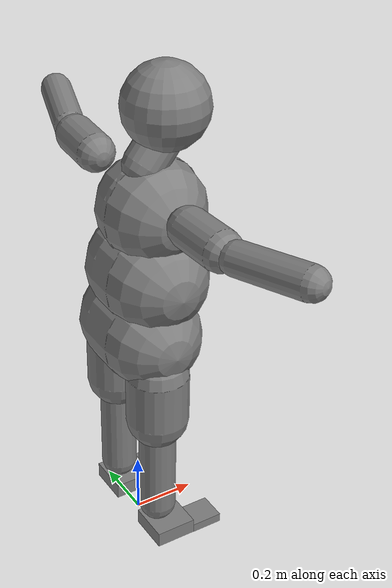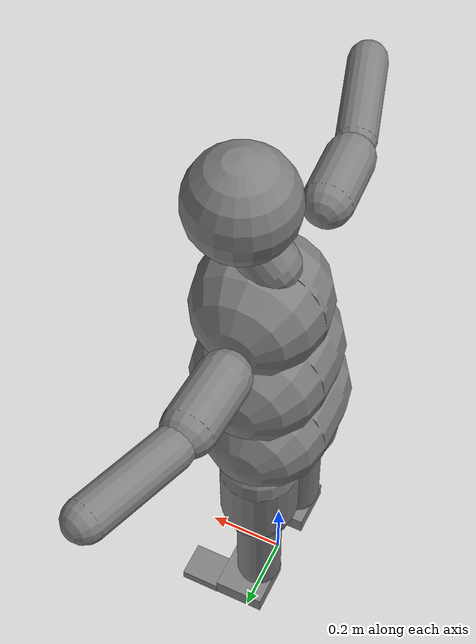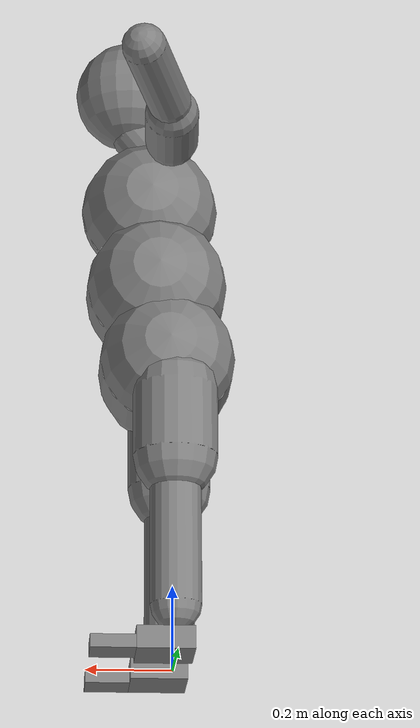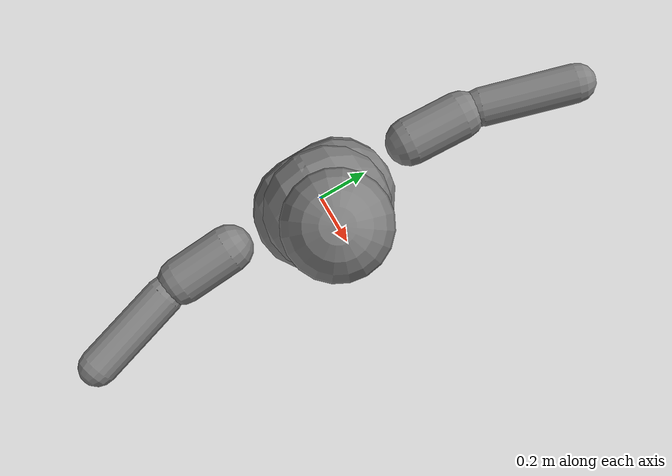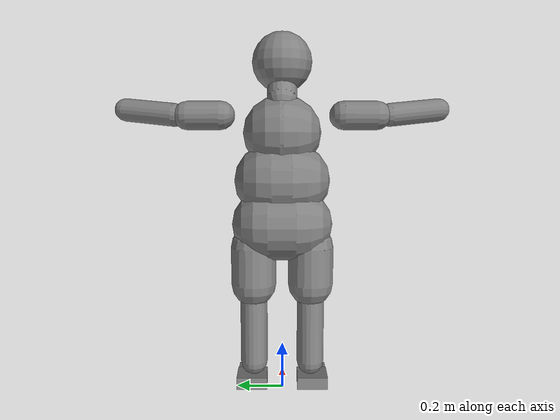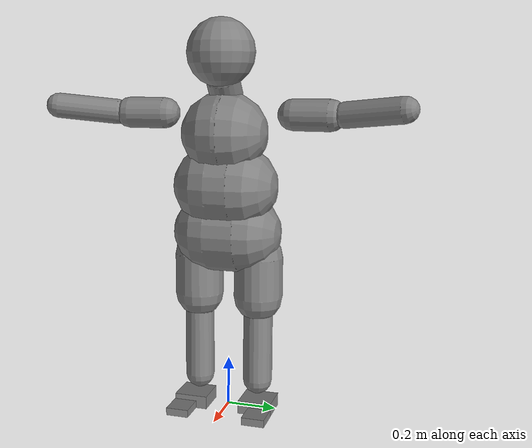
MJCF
<!-- GENERATED by training/tools/build_mjcf.py from SourceArt/Grandma/grandma.glb. Do not edit. -->
<mujoco model="grandma">
  <compiler angle="degree" autolimits="true" />
  <option timestep="0.005" gravity="0 0 -9.81" integrator="implicitfast" solver="Newton" iterations="20" cone="pyramidal" jacobian="auto">
    <flag multiccd="disable" />
  </option>
  <worldbody>
    <body name="pelvis" pos="0 0 0.687518">
      <inertial pos="0.01369838 0 0.04943876" quat="0.7071068 -0.7071068 0 0" mass="7.261935" diaginertia="0.1167119 0.1167119 0.0797341" />
      <freejoint name="root" />
      <geom name="pelvis_geom0" type="capsule" size="0.158599 0.06079297" contype="256" conaffinity="256" condim="3" friction="1 0.005 0.0001" pos="0.01369838 0 0.04943876" quat="0.7071068 -0.7071068 0 0" />
      <body name="torso" pos="0.020331 0 0.113719">
        <inertial pos="0.01755155 0 0.1248414" quat="0.7071068 -0.7071068 0 0" mass="10.6086" diaginertia="0.1619971 0.1619971 0.1243668" />
        <joint name="abdomen_flex" type="hinge" pos="0 0 0" axis="0 1 0" range="-30 60" armature="0.0123275" />
        <joint name="abdomen_lat" type="hinge" pos="0 0 0" axis="1 0 0" range="-35 35" armature="0.0123275" />
        <joint name="abdomen_twist" type="hinge" pos="0 0 0" axis="0 0 1" range="-45 45" armature="0.0123275" />
        <geom name="torso_geom0" type="capsule" size="0.1653731 0.04429897" contype="256" conaffinity="256" condim="3" friction="1 0.005 0.0001" pos="0.01755155 0 0.1248414" quat="0.7071068 -0.7071068 0 0" />
        <body name="chest" pos="0.030436 0 0.239868">
          <inertial pos="0.00322715 0 0.09331725" quat="0.7071068 -0.7071068 0 0" mass="10.37303" diaginertia="0.1172803 0.1172803 0.1115634" />
          <geom name="chest_geom0" type="capsule" size="0.1624991 0.00853077" contype="256" conaffinity="256" condim="3" friction="1 0.005 0.0001" pos="0.00322715 0 0.09331725" quat="0.7071068 -0.7071068 0 0" />
          <body name="head" pos="-0.021542 0 0.235281">
            <inertial pos="0.06321418 0 0.1408943" quat="0.6957955 0.1259707 0.1259707 0.6957955" mass="4.508248" diaginertia="0.04211547 0.0419446 0.02714084" />
            <geom name="head_geom0" type="capsule" size="0.06483854 0.04523582" contype="256" conaffinity="256" condim="3" friction="1 0.005 0.0001" pos="0.028002 0 0.035527" quat="0.9448209 0 0.3275873 0" />
            <geom name="head_geom1" type="sphere" size="0.1320292" contype="256" conaffinity="256" condim="3" friction="1 0.005 0.0001" pos="0.07174901 0 0.1664336" />
          </body>
          <body name="upper_arm_l" pos="-0.036923 0.233515 0.166949">
            <inertial pos="0.005906 0.102669 9.85e-05" quat="0.7074453 -0.7056016 0.0405895 0" mass="1.762684" diaginertia="0.009485407 0.009485407 0.003166983" />
            <joint name="shoulder_elev_l" type="hinge" pos="0 0 0" axis="1 0 0" range="-95 80" armature="0.00616375" />
            <joint name="shoulder_flex_l" type="hinge" pos="0 0 0" axis="0 0 -1" range="-60 170" armature="0.00616375" />
            <joint name="shoulder_twist_l" type="hinge" pos="0 0 0" axis="0 1 0" range="-80 80" armature="0.00616375" />
            <geom name="upper_arm_l_geom0" type="capsule" size="0.06227151 0.07170302" contype="256" conaffinity="256" condim="3" friction="1 0.005 0.0001" pos="0.005906 0.102669 9.85e-05" quat="0.7074453 -0.7056016 0.0405895 0" />
            <body name="forearm_l" pos="0.011812 0.205338 0.000197">
              <inertial pos="0.04204427 0.1378525 0.01519491" quat="0.743253 -0.6399094 0.195169 0" mass="1.454011" diaginertia="0.01246534 0.01246534 0.001752529" />
              <joint name="elbow_l" type="hinge" pos="0 0 0" axis="0 0 -1" range="0 145" armature="0.00616375" />
              <geom name="forearm_l_geom0" type="capsule" size="0.0502065 0.1198171" contype="256" conaffinity="256" condim="3" friction="1 0.005 0.0001" pos="0.04204427 0.1378525 0.01519491" quat="0.743253 -0.6399094 0.195169 0" />
            </body>
          </body>
          <body name="upper_arm_r" pos="-0.036923 -0.233515 0.166949">
            <inertial pos="0.005906 -0.102669 9.85e-05" quat="0.7074453 0.7056016 0.0405895 0" mass="1.762684" diaginertia="0.009485407 0.009485407 0.003166983" />
            <joint name="shoulder_elev_r" type="hinge" pos="0 0 0" axis="-1 0 0" range="-95 80" armature="0.00616375" />
            <joint name="shoulder_flex_r" type="hinge" pos="0 0 0" axis="0 0 1" range="-60 170" armature="0.00616375" />
            <joint name="shoulder_twist_r" type="hinge" pos="0 0 0" axis="0 1 0" range="-80 80" armature="0.00616375" />
            <geom name="upper_arm_r_geom0" type="capsule" size="0.06227151 0.07170302" contype="256" conaffinity="256" condim="3" friction="1 0.005 0.0001" pos="0.005906 -0.102669 9.85e-05" quat="0.7074453 0.7056016 0.0405895 0" />
            <body name="forearm_r" pos="0.011812 -0.205338 0.000197">
              <inertial pos="0.04204427 -0.1378525 0.01519491" quat="0.743253 0.6399094 0.195169 0" mass="1.454011" diaginertia="0.01246534 0.01246534 0.001752529" />
              <joint name="elbow_r" type="hinge" pos="0 0 0" axis="0 0 1" range="0 145" armature="0.00616375" />
              <geom name="forearm_r_geom0" type="capsule" size="0.0502065 0.1198171" contype="256" conaffinity="256" condim="3" friction="1 0.005 0.0001" pos="0.04204427 -0.1378525 0.01519491" quat="0.743253 0.6399094 0.195169 0" />
            </body>
          </body>
        </body>
      </body>
      <body name="thigh_l" pos="0 0.125029 0">
        <inertial pos="0 0 -0.131265" quat="0 1 0 0" mass="9.203324" diaginertia="0.09214218 0.09214218 0.04077778" />
        <joint name="hip_flex_l" type="hinge" pos="0 0 0" axis="0 -1 0" range="-30 120" armature="0.0123275" />
        <joint name="hip_abd_l" type="hinge" pos="0 0 0" axis="1 0 0" range="-30 45" armature="0.0123275" />
        <joint name="hip_rot_l" type="hinge" pos="0 0 0" axis="0 0 1" range="-40 40" armature="0.0123275" />
        <geom name="thigh_l_geom0" type="capsule" size="0.09862867 0.08195066" contype="256" conaffinity="256" condim="3" friction="1 0.005 0.0001" pos="0 0 -0.131265" quat="0 1 0 0" />
        <body name="shin_l" pos="0 0 -0.26253">
          <inertial pos="5e-07 0 -0.166659" quat="1.500069e-06 0 1 0" mass="2.810547" diaginertia="0.03208556 0.03208556 0.004705445" />
          <joint name="knee_l" type="hinge" pos="0 0 0" axis="0 1 0" range="0 150" armature="0.0123275" />
          <geom name="shin_l_geom0" type="capsule" size="0.05920442 0.1370568" contype="256" conaffinity="256" condim="3" friction="1 0.005 0.0001" pos="5e-07 0 -0.166659" quat="1.500069e-06 0 1 0" />
          <body name="foot_l" pos="1e-06 0 -0.333318">
            <inertial pos="0.02615167 0.01023298 -0.06556776" quat="1 0 0 0" mass="0.6904524" diaginertia="0.001207338 0.001169489 0.002062555" />
            <joint name="ankle_dorsi_l" type="hinge" pos="0 0 0" axis="0 -1 0" range="-50 25" armature="0.00616375" />
            <joint name="ankle_inv_l" type="hinge" pos="0 0 0" axis="-1 0 0" range="-20 30" armature="0.00616375" />
            <geom name="foot_l_geom0" type="box" size="0.06632233 0.06755075 0.02612956" contype="256" conaffinity="256" condim="3" friction="1 0.005 0.0001" pos="0.02615167 0.01023298 -0.06556776" />
            <body name="toe_l" pos="0.092474 0 -0.063281">
              <inertial pos="0.05151134 0.03296192 -0.01317408" quat="1 0 0 0" mass="0.2030742" diaginertia="0.0001578715 0.0001953401 0.0003217586" />
              <joint name="toe_l" type="hinge" pos="0 0 0" axis="0 -1 0" range="-30 60" stiffness="14.15351" damping="0.6604495" armature="0.003081875" />
              <geom name="toe_l_geom0" type="box" size="0.05151134 0.04582464 0.01524224" contype="256" conaffinity="256" condim="3" friction="1 0.005 0.0001" pos="0.05151134 0.03296192 -0.01317408" />
            </body>
          </body>
        </body>
      </body>
      <body name="thigh_r" pos="0 -0.125029 0">
        <inertial pos="0 0 -0.131265" quat="0 -1 0 0" mass="9.203324" diaginertia="0.09214218 0.09214218 0.04077778" />
        <joint name="hip_flex_r" type="hinge" pos="0 0 0" axis="0 -1 0" range="-30 120" armature="0.0123275" />
        <joint name="hip_abd_r" type="hinge" pos="0 0 0" axis="-1 0 0" range="-30 45" armature="0.0123275" />
        <joint name="hip_rot_r" type="hinge" pos="0 0 0" axis="0 0 -1" range="-40 40" armature="0.0123275" />
        <geom name="thigh_r_geom0" type="capsule" size="0.09862867 0.08195066" contype="256" conaffinity="256" condim="3" friction="1 0.005 0.0001" pos="0 0 -0.131265" quat="0 1 0 0" />
        <body name="shin_r" pos="0 0 -0.26253">
          <inertial pos="5e-07 0 -0.166659" quat="1.500069e-06 0 1 0" mass="2.810547" diaginertia="0.03208556 0.03208556 0.004705445" />
          <joint name="knee_r" type="hinge" pos="0 0 0" axis="0 1 0" range="0 150" armature="0.0123275" />
          <geom name="shin_r_geom0" type="capsule" size="0.05920442 0.1370568" contype="256" conaffinity="256" condim="3" friction="1 0.005 0.0001" pos="5e-07 0 -0.166659" quat="1.500069e-06 0 1 0" />
          <body name="foot_r" pos="1e-06 0 -0.333318">
            <inertial pos="0.02615167 -0.01023298 -0.06556776" quat="1 0 0 0" mass="0.6904524" diaginertia="0.001207338 0.001169489 0.002062555" />
            <joint name="ankle_dorsi_r" type="hinge" pos="0 0 0" axis="0 -1 0" range="-50 25" armature="0.00616375" />
            <joint name="ankle_inv_r" type="hinge" pos="0 0 0" axis="1 0 0" range="-20 30" armature="0.00616375" />
            <geom name="foot_r_geom0" type="box" size="0.06632233 0.06755075 0.02612956" contype="256" conaffinity="256" condim="3" friction="1 0.005 0.0001" pos="0.02615167 -0.01023298 -0.06556776" />
            <body name="toe_r" pos="0.092474 0 -0.063281">
              <inertial pos="0.05151134 -0.03296192 -0.01317408" quat="1 0 0 0" mass="0.2030742" diaginertia="0.0001578715 0.0001953401 0.0003217586" />
              <joint name="toe_r" type="hinge" pos="0 0 0" axis="0 -1 0" range="-30 60" stiffness="14.15351" damping="0.6604495" armature="0.003081875" />
              <geom name="toe_r_geom0" type="box" size="0.05151134 0.04582464 0.01524224" contype="256" conaffinity="256" condim="3" friction="1 0.005 0.0001" pos="0.05151134 -0.03296192 -0.01317408" />
            </body>
          </body>
        </body>
      </body>
    </body>
  </worldbody>
  <contact />
  <actuator>
    <position name="abdomen_flex" joint="abdomen_flex" kp="212.3027" kv="19.81348" forcelimited="true" forcerange="-84.92107 84.92107" />
    <position name="abdomen_lat" joint="abdomen_lat" kp="212.3027" kv="19.81348" forcelimited="true" forcerange="-84.92107 84.92107" />
    <position name="abdomen_twist" joint="abdomen_twist" kp="212.3027" kv="19.81348" forcelimited="true" forcerange="-84.92107 84.92107" />
    <position name="shoulder_elev_l" joint="shoulder_elev_l" kp="42.46053" kv="3.962697" forcelimited="true" forcerange="-33.96843 33.96843" />
    <position name="shoulder_flex_l" joint="shoulder_flex_l" kp="42.46053" kv="3.962697" forcelimited="true" forcerange="-33.96843 33.96843" />
    <position name="shoulder_twist_l" joint="shoulder_twist_l" kp="42.46053" kv="3.962697" forcelimited="true" forcerange="-33.96843 33.96843" />
    <position name="elbow_l" joint="elbow_l" kp="35.38378" kv="3.302247" forcelimited="true" forcerange="-29.72237 29.72237" />
    <position name="shoulder_elev_r" joint="shoulder_elev_r" kp="42.46053" kv="3.962697" forcelimited="true" forcerange="-33.96843 33.96843" />
    <position name="shoulder_flex_r" joint="shoulder_flex_r" kp="42.46053" kv="3.962697" forcelimited="true" forcerange="-33.96843 33.96843" />
    <position name="shoulder_twist_r" joint="shoulder_twist_r" kp="42.46053" kv="3.962697" forcelimited="true" forcerange="-33.96843 33.96843" />
    <position name="elbow_r" joint="elbow_r" kp="35.38378" kv="3.302247" forcelimited="true" forcerange="-29.72237 29.72237" />
    <position name="hip_flex_l" joint="hip_flex_l" kp="212.3027" kv="19.81348" forcelimited="true" forcerange="-118.8895 118.8895" />
    <position name="hip_abd_l" joint="hip_abd_l" kp="212.3027" kv="19.81348" forcelimited="true" forcerange="-118.8895 118.8895" />
    <position name="hip_rot_l" joint="hip_rot_l" kp="212.3027" kv="19.81348" forcelimited="true" forcerange="-118.8895 118.8895" />
    <position name="knee_l" joint="knee_l" kp="212.3027" kv="19.81348" forcelimited="true" forcerange="-118.8895 118.8895" />
    <position name="ankle_dorsi_l" joint="ankle_dorsi_l" kp="141.5351" kv="13.20899" forcelimited="true" forcerange="-93.41317 93.41317" />
    <position name="ankle_inv_l" joint="ankle_inv_l" kp="141.5351" kv="13.20899" forcelimited="true" forcerange="-93.41317 93.41317" />
    <position name="hip_flex_r" joint="hip_flex_r" kp="212.3027" kv="19.81348" forcelimited="true" forcerange="-118.8895 118.8895" />
    <position name="hip_abd_r" joint="hip_abd_r" kp="212.3027" kv="19.81348" forcelimited="true" forcerange="-118.8895 118.8895" />
    <position name="hip_rot_r" joint="hip_rot_r" kp="212.3027" kv="19.81348" forcelimited="true" forcerange="-118.8895 118.8895" />
    <position name="knee_r" joint="knee_r" kp="212.3027" kv="19.81348" forcelimited="true" forcerange="-118.8895 118.8895" />
    <position name="ankle_dorsi_r" joint="ankle_dorsi_r" kp="141.5351" kv="13.20899" forcelimited="true" forcerange="-93.41317 93.41317" />
    <position name="ankle_inv_r" joint="ankle_inv_r" kp="141.5351" kv="13.20899" forcelimited="true" forcerange="-93.41317 93.41317" />
  </actuator>
</mujoco>
